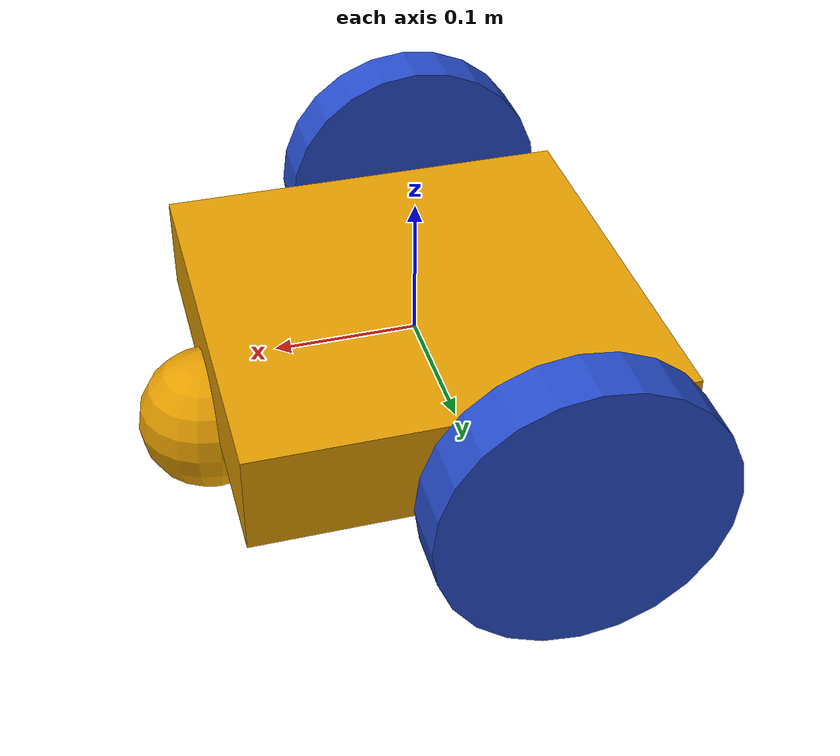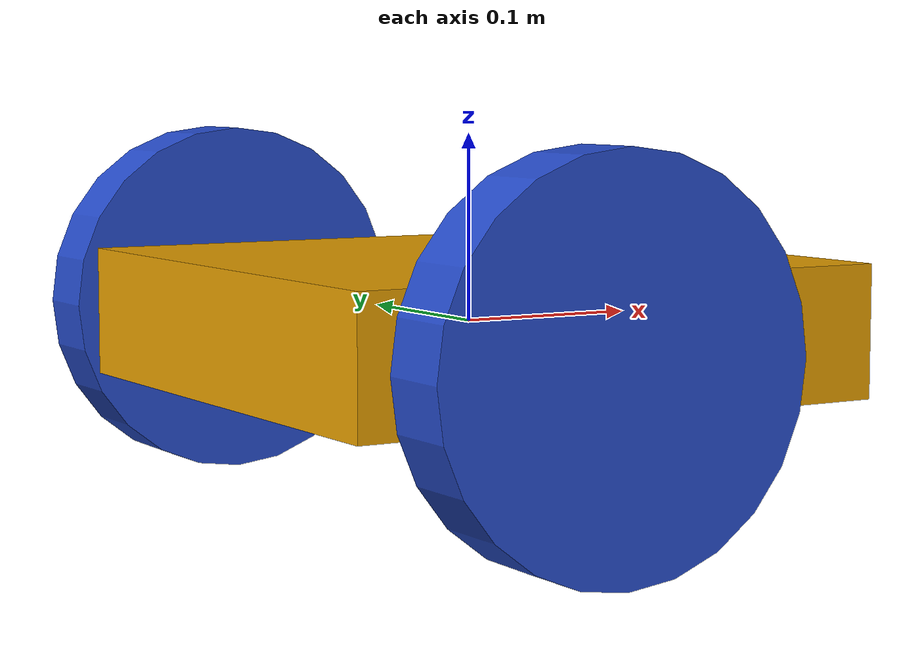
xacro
<?xml version="1.0" ?>
<robot name="m2wr" xmlns:xacro="http://www.ros.org/wiki/xacro">

  <xacro:include filename="$(find m2wr_description)/urdf/materials.xacro"/>
  <xacro:include filename="$(find m2wr_description)/urdf/m2wr.gazebo"/>
  <xacro:include filename="$(find m2wr_description)/urdf/macro.xacro"/>

  <link name="link_chassis">
    <!-- pose and inertial -->
    <pose>0 0 0.1 0 0 0</pose>
    <inertial>
      <mass value="5"/>
      <origin rpy="0 0 0" xyz="0 0 0.1"/>
      <inertia ixx="0.0395416666667" ixy="0" ixz="0" iyy="0.106208333333" iyz="0" izz="0.106208333333"/>
    </inertial>
    <!-- body -->
    <collision name="collision_chassis">
      <geometry>
        <!--box size="0.3 0.3 0.07"/-->
        <mesh filename="package://m2wr_description/meshes/arucox0.dae"/>
      </geometry>
    </collision>
    <visual>
      <origin rpy="0 0 0" xyz="0 0 0"/>
      <geometry>
        <!--box size="0.3 0.3 0.07"/-->
        <mesh filename="package://m2wr_description/meshes/arucox0.dae"/>
      </geometry>
      <!--material name="blue"/-->
    </visual>
    <!-- caster front -->
    <collision name="caster_front_collision">
      <origin rpy=" 0 0 0" xyz="0.25 0 -0.05"/>
      <geometry>
        <sphere radius="0.05"/>
      </geometry>
      <surface>
        <friction>
          <ode>
            <mu>0</mu>
            <mu2>0</mu2>
            <slip1>1.0</slip1>
            <slip2>1.0</slip2>
          </ode>
        </friction>
      </surface>
    </collision>
    <visual name="caster_front_visual">
      <origin rpy=" 0 0 0" xyz="0.15 0 -0.05"/>
      <geometry>
        <sphere radius="0.05"/>
      </geometry>
    </visual>
  </link>

  <xacro:link_wheel name="link_right_wheel"/>

  <xacro:joint_wheel name="joint_right_wheel" child="link_right_wheel" origin_xyz="-0.05 0.2 0"/>

  <xacro:link_wheel name="link_left_wheel"/>

  <xacro:joint_wheel name="joint_left_wheel" child="link_left_wheel" origin_xyz="-0.05 -0.2 0"/>

</robot>

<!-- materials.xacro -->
<robot>
    <material name="black">
        <color rgba="0.0 0.0 0.0 1.0" />
    </material>
    <material name="blue">
        <color rgba="0.203125 0.23828125 0.28515625 1.0" />
    </material>
    <material name="green">
        <color rgba="0.0 0.8 0.0 1.0" />
    </material>
    <material name="grey">
        <color rgba="0.2 0.2 0.2 1.0" />
    </material>
    <material name="orange">
        <color rgba="1.0 0.423529411765 0.0392156862745 1.0" />
    </material>
    <material name="brown">
        <color rgba="0.870588235294 0.811764705882 0.764705882353 1.0" />
    </material>
    <material name="red">
        <color rgba="0.80078125 0.12890625 0.1328125 1.0" />
    </material>
    <material name="white">
        <color rgba="1.0 1.0 1.0 1.0" />
    </material>

</robot>

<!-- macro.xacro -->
<robot>
    <macro name="link_wheel" params="name">
        <link name="${name}">
            <inertial>
                <mass value="0.2" />
                <origin rpy="0 1.5707 1.5707" xyz="0 0 0" />
                <inertia ixx="0.000526666666667" ixy="0" ixz="0" iyy="0.000526666666667" iyz="0" izz="0.001" />
            </inertial>
            <collision name="link_right_wheel_collision">
                <origin rpy="0 1.5707 1.5707" xyz="0 0 0" />
                <geometry>
                    <cylinder length="0.04" radius="0.1" />
                </geometry>
            </collision>
            <visual name="${name}_visual">
                <origin rpy="0 1.5707 1.5707" xyz="0 0 0" />
                <geometry>
                    <cylinder length="0.04" radius="0.1" />
                </geometry>
            </visual>
        </link>
    </macro>

    <macro name="joint_wheel" params="name child origin_xyz ">
    <joint name="${name}" type="continuous">
        <origin rpy="0 0 0" xyz="${origin_xyz}" />
        <child link="${child}" />
        <parent link="link_chassis" />
        <axis rpy="0 0 0" xyz="0 1 0" />
        <limit effort="10000" velocity="1000" />
        <joint_properties damping="1.0" friction="1.0" />
    </joint>

    </macro>
</robot>
